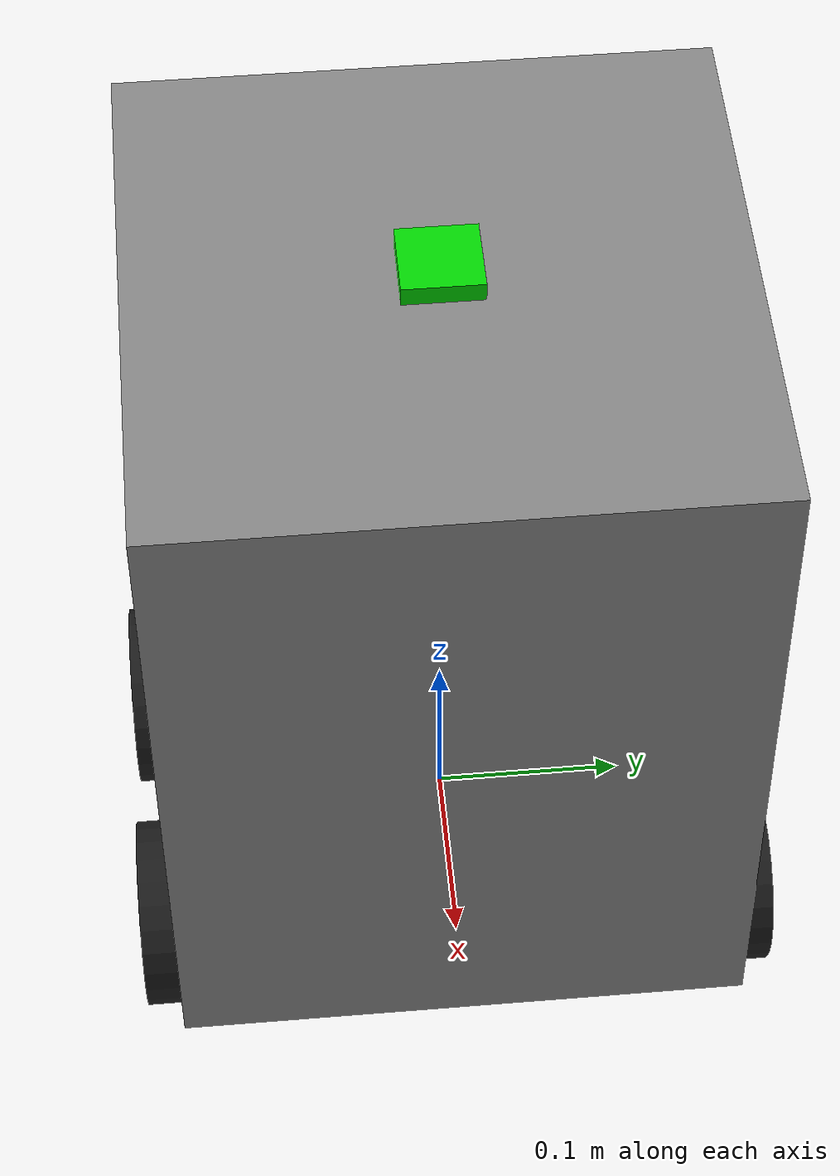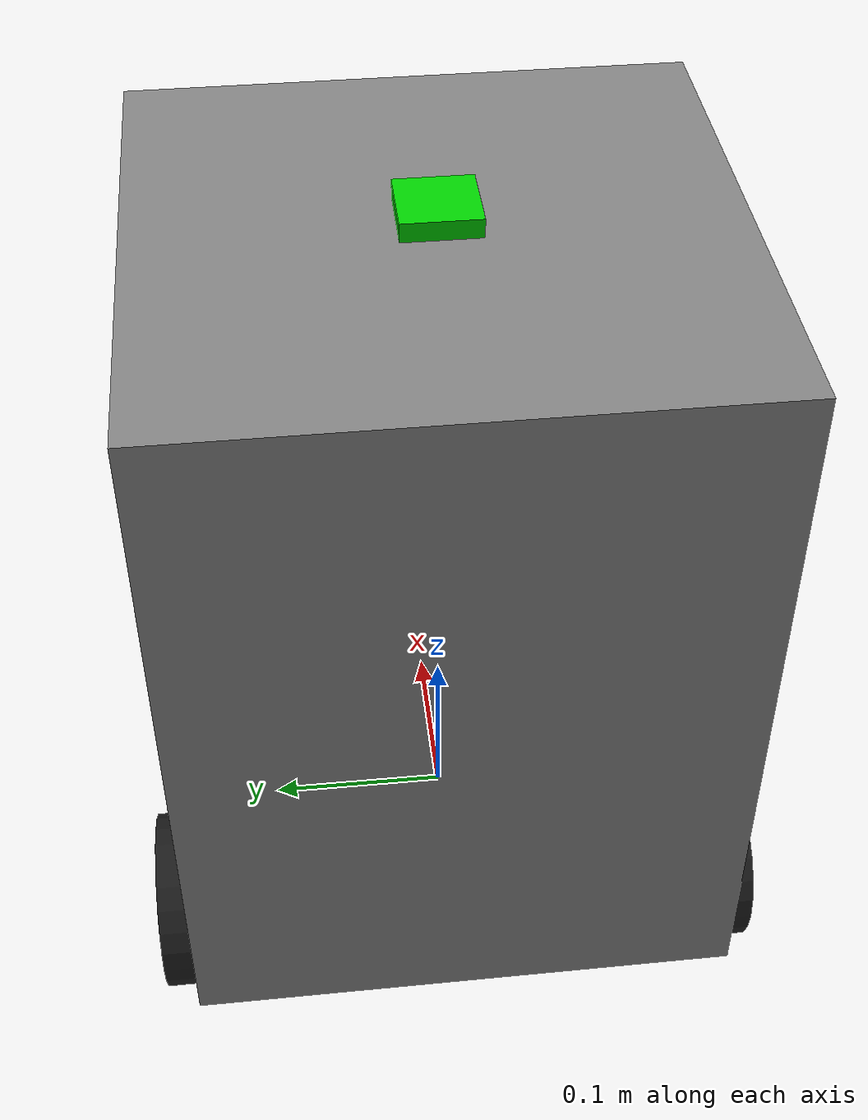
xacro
<?xml version="1.0"?>
<robot name="chitti" xmlns:xacro="http://www.ros.org/wiki/xacro">
  <xacro:arg name="use_sim" default="false"/>
  <xacro:arg name="serial_port" default="/dev/ttyUSB1"/>

  <xacro:property name="base_length"  value="0.30"/>
  <xacro:property name="base_width"   value="0.30"/>
  <xacro:property name="base_height"  value="0.40"/>
  <xacro:property name="wheel_radius" value="0.05"/>
  <xacro:property name="wheel_width"  value="0.04"/>
  <xacro:property name="track_width"  value="0.30"/>
  <xacro:property name="wheel_x"      value="0.0"/>
  <link name="base_footprint"/>

  <joint name="base_footprint_joint" type="fixed">
    <parent link="base_footprint"/>
    <child link="base_link"/>
    <origin xyz="0 0 0" rpy="0 0 0"/>
  </joint><!-- wheels centred fore-aft -->

  <!-- ═══════════════════════════════════════
       BASE LINK  (centre of robot body)
  ═══════════════════════════════════════ -->
  <link name="base_link">
    <visual>
      <geometry>
        <box size="${base_length} ${base_width} ${base_height}"/>
      </geometry>
      <origin xyz="0 0 ${base_height/2}" rpy="0 0 0"/>
      <material name="grey">
        <color rgba="0.5 0.5 0.5 1.0"/>
      </material>
    </visual>
    <collision>
      <geometry>
        <box size="${base_length} ${base_width} ${base_height}"/>
      </geometry>
      <origin xyz="0 0 ${base_height/2}" rpy="0 0 0"/>
    </collision>
    <inertial>
      <mass value="5.0"/>
      <origin xyz="0 0 ${base_height/2}" rpy="0 0 0"/>
      <inertia ixx="0.05" ixy="0" ixz="0"
               iyy="0.05" iyz="0"
               izz="0.05"/>
    </inertial>
  </link>

  <!-- ═══════════════════════════════════════
       WHEEL MACRO  (reused for all 4 wheels)
  ═══════════════════════════════════════ -->
  <xacro:macro name="wheel" params="name x_pos y_pos">
    <link name="${name}_wheel">
      <visual>
        <geometry>
          <cylinder radius="${wheel_radius}" length="${wheel_width}"/>
        </geometry>
        <origin xyz="0 0 0" rpy="${pi/2} 0 0"/>
        <material name="black">
          <color rgba="0.1 0.1 0.1 1.0"/>
        </material>
      </visual>
      <collision>
        <geometry>
          <cylinder radius="${wheel_radius}" length="${wheel_width}"/>
        </geometry>
        <origin xyz="0 0 0" rpy="${pi/2} 0 0"/>
      </collision>
      <inertial>
        <mass value="0.5"/>
        <inertia ixx="0.001" ixy="0" ixz="0"
                 iyy="0.001" iyz="0"
                 izz="0.001"/>
      </inertial>
    </link>

    <joint name="${name}_wheel_joint" type="continuous">
      <parent link="base_link"/>
      <child  link="${name}_wheel"/>
      <origin xyz="${x_pos} ${y_pos} 0" rpy="0 0 0"/>
      <axis xyz="0 1 0"/>
    </joint>
  </xacro:macro>

  <!-- Instantiate 4 wheels -->
  <xacro:wheel name="front_left"  x_pos=" ${base_length/4}" y_pos=" ${track_width/2}"/>
  <xacro:wheel name="front_right" x_pos=" ${base_length/4}" y_pos="-${track_width/2}"/>
  <xacro:wheel name="rear_left"   x_pos="-${base_length/4}" y_pos=" ${track_width/2}"/>
  <xacro:wheel name="rear_right"  x_pos="-${base_length/4}" y_pos="-${track_width/2}"/>

  <!-- ═══════════════════════════════════════
       GPS LINK  (NEO-6M, top-centre of robot)
       Mounted at the top of the body, centred.
  ═══════════════════════════════════════ -->
  <link name="gps_link">
    <visual>
      <geometry>
        <box size="0.04 0.04 0.01"/>
      </geometry>
      <material name="green">
        <color rgba="0.0 0.8 0.0 1.0"/>
      </material>
    </visual>
  </link>

  <joint name="gps_joint" type="fixed">
    <parent link="base_link"/>
    <child  link="gps_link"/>
    <!-- sits on top of the body, centred -->
    <origin xyz="0 0 ${base_height + 0.01}" rpy="0 0 0"/>
  </joint>

  <!-- ═══════════════════════════════════════
       IMU LINK  (MPU9250, centre of robot body)
  ═══════════════════════════════════════ -->
  <link name="imu_link">
    <visual>
      <geometry>
        <box size="0.02 0.02 0.005"/>
      </geometry>
      <material name="blue">
        <color rgba="0.0 0.0 0.8 1.0"/>
      </material>
    </visual>
  </link>

  <joint name="imu_joint" type="fixed">
    <parent link="base_link"/>
    <child  link="imu_link"/>
    <!-- mounted at geometric centre of the body -->
    <origin xyz="0 0 ${base_height/2}" rpy="0 0 0"/>
  </joint>

  <ros2_control name="chitti_hardware" type="system">
    <hardware>
      <xacro:if value="$(arg use_sim)">
        <plugin>gz_ros2_control/GazeboSimSystem</plugin>
      </xacro:if>
      <xacro:unless value="$(arg use_sim)">
        <plugin>chitti_control/CytronHardwareInterface</plugin>
        <!-- Serial Connection to ESP32 MDD3A Bridge -->
        <param name="serial_port">$(arg serial_port)</param>
        <!-- Wheel physical parameters -->
        <param name="wheel_radius">0.05</param>
        <param name="max_motor_rpm">200</param>
      </xacro:unless>
    </hardware>

    <joint name="front_left_wheel_joint">
      <command_interface name="velocity"/>
      <state_interface name="position"/>
      <state_interface name="velocity"/>
    </joint>
    <joint name="front_right_wheel_joint">
      <command_interface name="velocity"/>
      <state_interface name="position"/>
      <state_interface name="velocity"/>
    </joint>
    <joint name="rear_left_wheel_joint">
      <command_interface name="velocity"/>
      <state_interface name="position"/>
      <state_interface name="velocity"/>
    </joint>
    <joint name="rear_right_wheel_joint">
      <command_interface name="velocity"/>
      <state_interface name="position"/>
      <state_interface name="velocity"/>
    </joint>
  </ros2_control>

  <!-- Gazebo Simulation Control Plugin -->
  <xacro:if value="$(arg use_sim)">
    <gazebo>
      <plugin filename="libgz_ros2_control-system.so" name="gz_ros2_control::GazeboSimROS2ControlPlugin">
        <parameters>$(find chitti_control)/config/controllers.yaml</parameters>
      </plugin>
    </gazebo>
  </xacro:if>

</robot>
